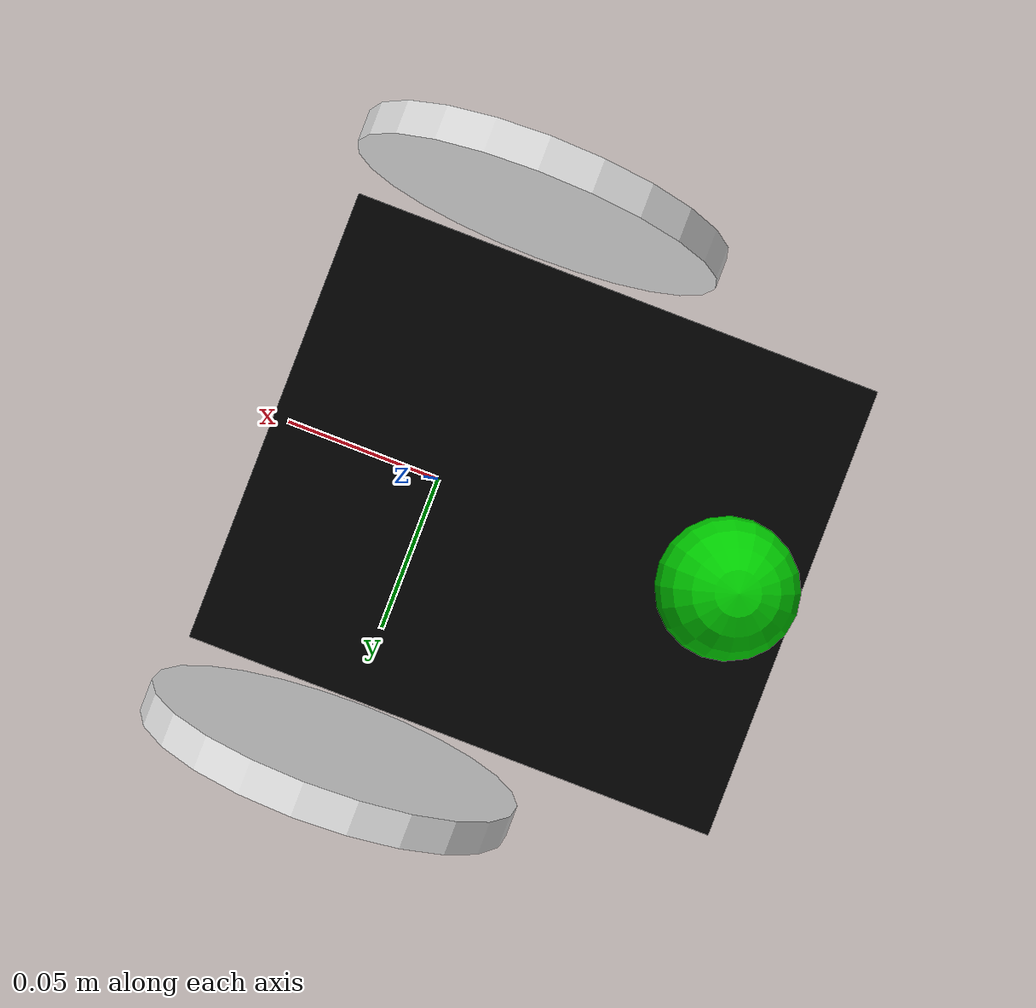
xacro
<?xml version="1.0"?>
<robot xmlns:xacro="http://www.ros.org/wiki/xacro">

    <xacro:include filename="robot.material.xacro" />
    <xacro:include filename="inertial_macros.xacro" />

    <!-- BASE LINK -->
    <link name="base_link"></link>

    <!-- BASE_PLATE LINK -->
    <joint name="base_plate_joint" type="fixed">
        <parent link="base_link" />
        <child link="base_plate" />
        <origin xyz="-0.12825 0 -0.0435" />
    </joint>

    <link name="base_plate">
        <visual>
            <origin xyz="0.096 0 0.0025" />
            <geometry>
                <box size="0.192 0.164 0.005" />
            </geometry>
            <material name="black" />
        </visual>
        <collision>
            <origin xyz="0.096 0 0.0025" />
            <geometry>
                <box size="0.192 0.164 0.005" />
            </geometry>
        </collision>
        <xacro:inertial_box mass="0.5" x="0.192" y="0.164" z="0.005">
            <origin xyz="0.096 0 0.0025" rpy="0 0 0"/>
        </xacro:inertial_box>
    </link>

    <!-- LEFT_WHEEL LINK -->
    <joint name="left_wheel_joint" type="continuous">
        <parent link="base_link" />
        <child link="left_wheel" />
        <origin xyz="0 0.092 0" rpy="-${pi/2} 0 0" />
        <axis xyz="0 0 1" />
    </joint>

    <link name="left_wheel">
        <visual>
            <origin xyz="0 0 0" />
            <geometry>
                <cylinder radius="0.06" length="0.01" />
            </geometry>
            <material name="grey" />
        </visual>
        <collision>
            <origin xyz="0 0 0" />
            <geometry>
                <cylinder radius="0.06" length="0.001" />
            </geometry>
        </collision>
        <xacro:inertial_cylinder mass="0.1" length="0.01" radius="0.06">
            <origin xyz="0 0 0" rpy="0 0 0"/>
        </xacro:inertial_cylinder>
    </link>

    <!-- RIGHT_WHEEL LINK -->
    <joint name="right_wheel_joint" type="continuous">
        <parent link="base_link" />
        <child link="right_wheel" />
        <origin xyz="0 -0.092 0" rpy="${pi/2} 0 0" />
        <axis xyz="0 0 -1" />
    </joint>

    <link name="right_wheel">
        <visual>
            <origin xyz="0 0 0" />
            <geometry>
                <cylinder radius="0.06" length="0.01" />
            </geometry>
            <material name="grey" />
        </visual>
        <collision>
            <origin xyz="0 0 0" />
            <geometry>
                <cylinder radius="0.06" length="0.001" />
            </geometry>
        </collision>
        <xacro:inertial_cylinder mass="0.1" length="0.01" radius="0.06">
            <origin xyz="0 0 0" rpy="0 0 0"/>
        </xacro:inertial_cylinder>
    </link>

    <!-- CASTER_WHEEL LINK -->
    <joint name="caster_wheel_joint" type="fixed">
        <parent link="base_link" />
        <child link="caster_wheel" />
        <origin xyz="-0.10325 0 -0.035" />
    </joint>

    <link name="caster_wheel">
        <visual>
            <origin xyz="0 0 0" />
            <geometry>
                <sphere radius="0.025" />
            </geometry>
            <material name="green" />
        </visual>
        <collision>
            <origin xyz="0 0 0" />
            <geometry>
                <sphere radius="0.025" />
            </geometry>
        </collision>
        <xacro:inertial_sphere mass="0.1" radius="0.025">
            <origin xyz="0 0 0" rpy="0 0 0"/>
        </xacro:inertial_sphere>
    </link>
</robot>

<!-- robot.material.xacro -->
<robot xmlns:xacro="http://www.ros.org/wiki/xacro">

  <material name="black">
    <color rgba="0.0 0.0 0.0 1.0"/>
  </material>

  <material name="blue">
    <color rgba="0.0 0.0 0.8 1.0"/>
  </material>

  <material name="green">
    <color rgba="0.0 0.8 0.0 1.0"/>
  </material>

  <material name="grey">
    <color rgba="0.9 0.9 0.9 1.0"/>
  </material>

  <material name="orange">
    <color rgba="${255/255} ${108/255} ${10/255} 1.0"/>
  </material>

  <material name="brown">
    <color rgba="${222/255} ${207/255} ${195/255} 1.0"/>
  </material>

  <material name="red">
    <color rgba="0.8 0.0 0.0 1.0"/>
  </material>

  <material name="white">
    <color rgba="1.0 1.0 1.0 1.0"/>
  </material>

</robot>
